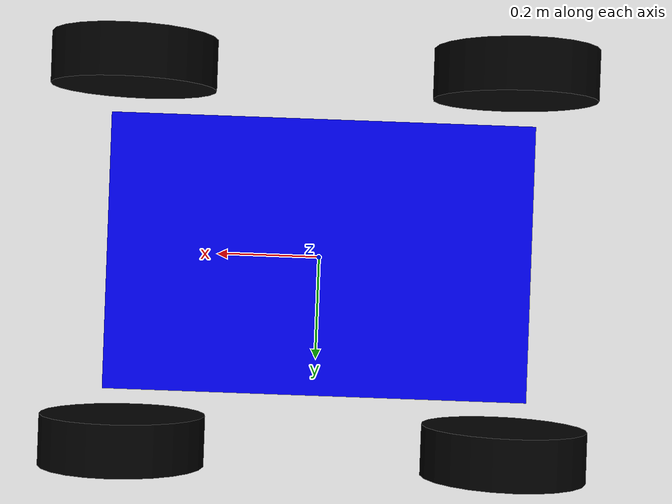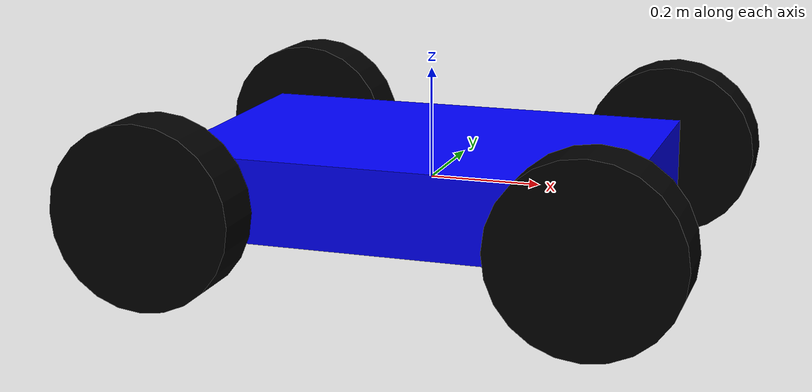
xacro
<?xml version="1.0"?>

<robot name="alpha" xmlns:xacro="http://www.ros.org/wiki/xacro">
    <link name="base_link">
        <visual name="">
            <origin xyz="0.0 0.0 0.0" rpy="0.0 0.0 0.0"/>
            <geometry>
                <box size="0.813 0.53 0.15"/>
            </geometry>
            <material name="">
                <color rgba="0.0 0.0 1.0 1.0"/>
            </material>
        </visual>
        <collision>
            <origin xyz="0.0 0.0 0.0" rpy="0.0 0.0 0.0"/>
            <geometry>
                <box size="0.813 0.53 0.15"/>
            </geometry>
        </collision>
    </link>

    <xacro:macro name="wheel" params="name x y">
        <link name="${name}">
            <visual name="">
                <origin xyz="0.0 0.0 0.0" rpy="1.57079632679 0.0 0.0"/>
                <geometry>
                    <cylinder radius="0.1625" length="0.1"/>
                </geometry>
                <material name="">
                    <color rgba="0.0 0.0 0.0 1.0"/>
                </material>
            </visual>
            <collision>
                <origin xyz="0.0 0.0 0.0" rpy="1.57079632679 0.0 0.0"/>
                <geometry>
                    <cylinder radius="0.1625" length="0.1"/>
                </geometry>
            </collision>
        </link>

        <joint name="joint_${name}" type="continuous">
            <origin xyz="${x} ${y} 0.0" rpy="0.0 0.0 0.0"/>
            <parent link="base_link"/>
            <child link="${name}"/>
            <axis xyz="0.0 1.0 0.0"/>
        </joint>
    </xacro:macro>

    <xacro:wheel name="wheel_rf" x="0.3765" y="0.3725"/>
    <xacro:wheel name="wheel_lf" x="0.3765" y="-0.3725"/>
    <xacro:wheel name="wheel_rr" x="-0.3765" y="0.3725"/>
    <xacro:wheel name="wheel_lr" x="-0.3765" y="-0.3725"/>

</robot>
